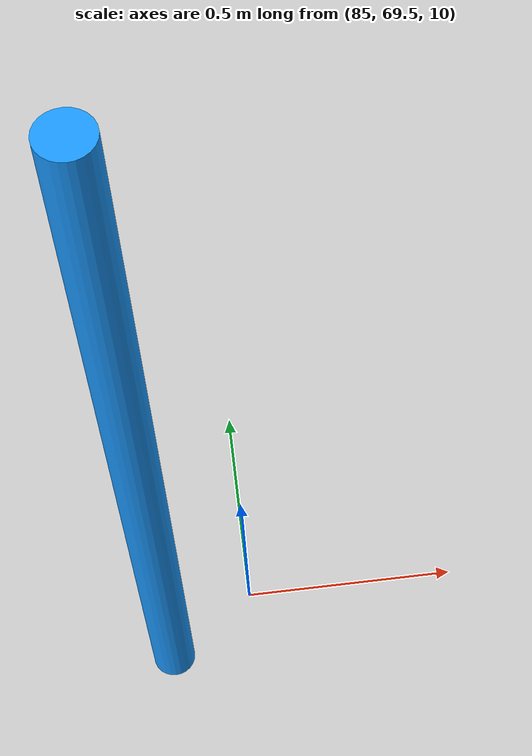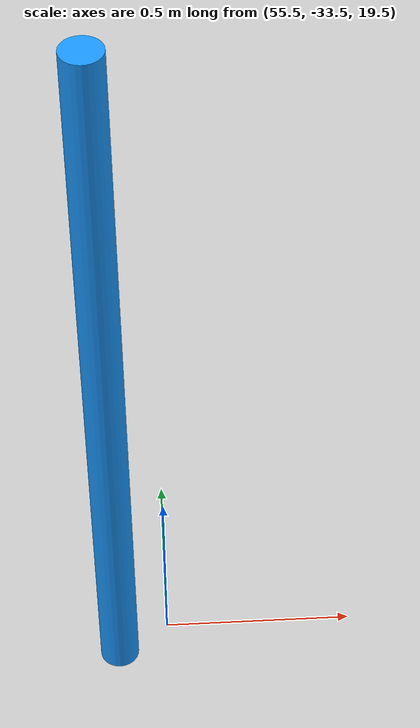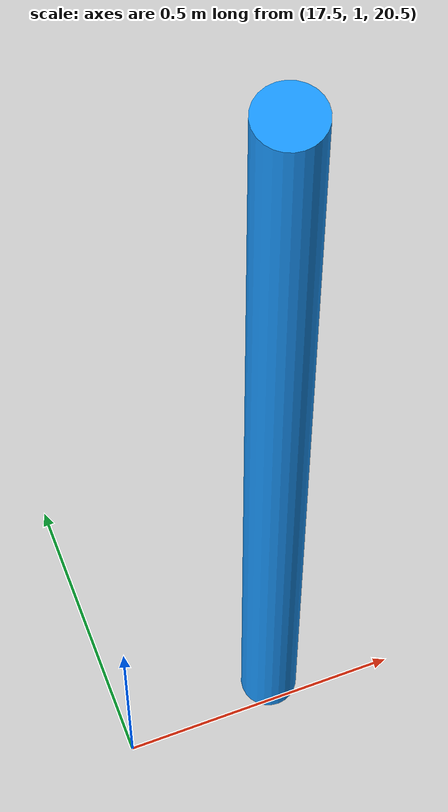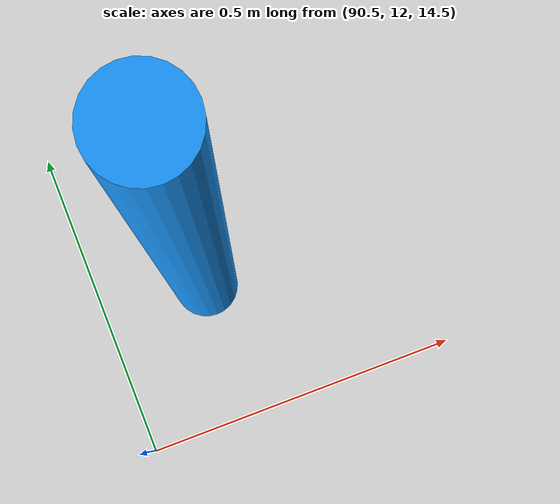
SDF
<sdf version="1.9">
 <world name="jezero_margin_rocks_k05_full">
  <physics name="1ms" type="ignored">
   <max_step_size>0.001</max_step_size>
   <real_time_factor>1</real_time_factor>
  </physics>
  <gravity>0 0 -3.721</gravity>
  <plugin filename="gz-sim-physics-system" name="gz::sim::systems::Physics"/>
  <plugin filename="gz-sim-user-commands-system" name="gz::sim::systems::UserCommands"/>
  <plugin filename="gz-sim-scene-broadcaster-system" name="gz::sim::systems::SceneBroadcaster"/>
  <scene><ambient>0.5 0.4 0.35 1</ambient><background>0.85 0.65 0.50 1</background><grid>false</grid></scene>
  <light type="directional" name="sun">
   <pose>0 0 100 0 0 0</pose>
   <diffuse>0.9 0.85 0.8 1</diffuse>
   <direction>-0.5 0.3 -0.8</direction>
  </light>
  <model name="waypoint_sol1116">
   <static>true</static>
   <pose>84.8 69.39 10.93 0 0 0</pose>
   <link name="link">
    <visual name="v">
     <geometry><cylinder><radius>0.05</radius><length>2.0</length></cylinder></geometry>
     <material><ambient>0.1 0.6 1 1</ambient><diffuse>0.1 0.6 1 1</diffuse></material>
    </visual>
   </link>
  </model>
  <model name="waypoint_sol1117">
   <static>true</static>
   <pose>90.67 12.22 15.52 0 0 0</pose>
   <link name="link">
    <visual name="v">
     <geometry><cylinder><radius>0.05</radius><length>2.0</length></cylinder></geometry>
     <material><ambient>0.1 0.6 1 1</ambient><diffuse>0.1 0.6 1 1</diffuse></material>
    </visual>
   </link>
  </model>
  <model name="waypoint_sol1118">
   <static>true</static>
   <pose>87.43 -21.52 18.33 0 0 0</pose>
   <link name="link">
    <visual name="v">
     <geometry><cylinder><radius>0.05</radius><length>2.0</length></cylinder></geometry>
     <material><ambient>0.1 0.6 1 1</ambient><diffuse>0.1 0.6 1 1</diffuse></material>
    </visual>
   </link>
  </model>
  <model name="waypoint_sol1120">
   <static>true</static>
   <pose>55.37 -33.69 20.64 0 0 0</pose>
   <link name="link">
    <visual name="v">
     <geometry><cylinder><radius>0.05</radius><length>2.0</length></cylinder></geometry>
     <material><ambient>0.1 0.6 1 1</ambient><diffuse>0.1 0.6 1 1</diffuse></material>
    </visual>
   </link>
  </model>
  <model name="waypoint_sol1122">
   <static>true</static>
   <pose>17.77 1.01 21.59 0 0 0</pose>
   <link name="link">
    <visual name="v">
     <geometry><cylinder><radius>0.05</radius><length>2.0</length></cylinder></geometry>
     <material><ambient>0.1 0.6 1 1</ambient><diffuse>0.1 0.6 1 1</diffuse></material>
    </visual>
   </link>
  </model>
  <model name="waypoint_sol1134">
   <static>true</static>
   <pose>-16.25 31.48 21.05 0 0 0</pose>
   <link name="link">
    <visual name="v">
     <geometry><cylinder><radius>0.05</radius><length>2.0</length></cylinder></geometry>
     <material><ambient>0.1 0.6 1 1</ambient><diffuse>0.1 0.6 1 1</diffuse></material>
    </visual>
   </link>
  </model>
 </world>
</sdf>
